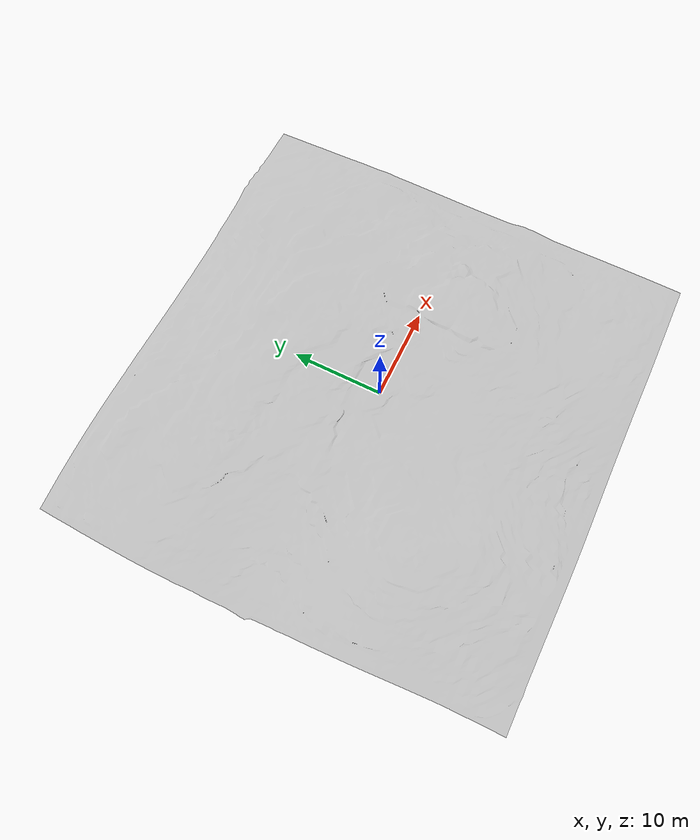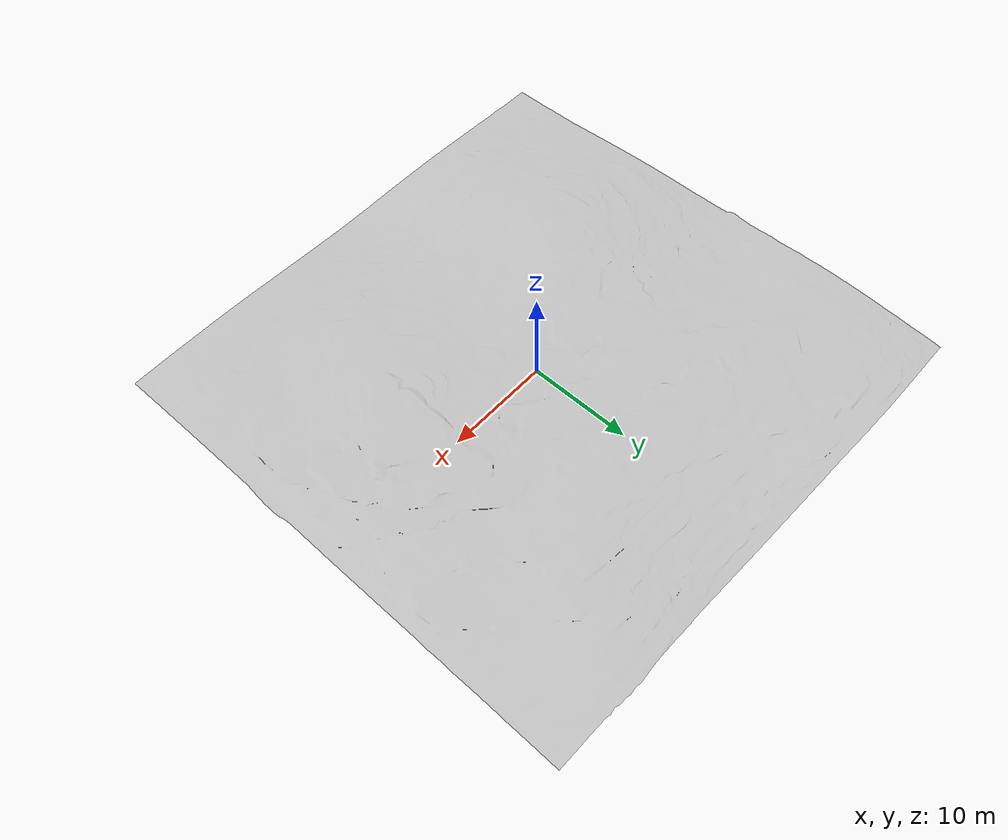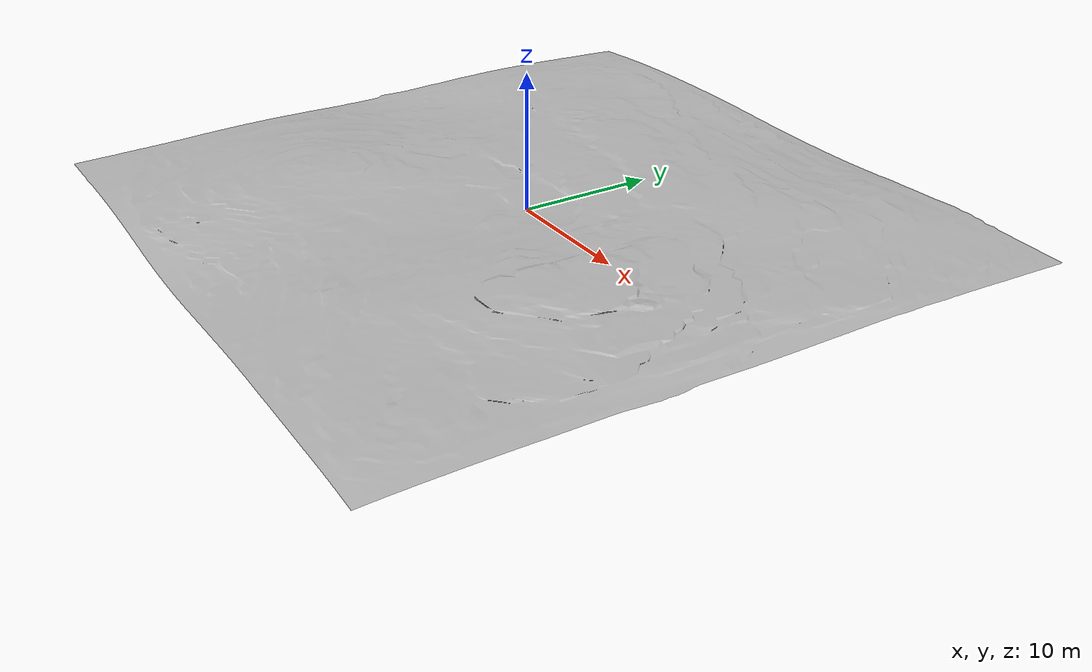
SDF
<sdf version="1.7">
 <world name="default">
  <light name="sun" type="directional">
   <pose>0 0 10 0 -0 0</pose>
   <diffuse>0.8 0.8 0.8 1</diffuse>
   <specular>0.2 0.2 0.2 1</specular>
   <attenuation>
    <range>1000</range>
    <constant>0.9</constant>
    <linear>0.01</linear>
    <quadratic>0.001</quadratic>
   </attenuation>
   <direction>-0.5 0.1 -0.9</direction>
   <spot><inner_angle>0</inner_angle><outer_angle>0</outer_angle><falloff>0</falloff></spot>
  </light>
  <model name="terrain_1">
   <static>1</static>
   <link name="body">
    <visual name="visual">
     <geometry><mesh><uri>model://terrain_1/media/terrain_1.dae</uri></mesh></geometry>
     <material>
      <script>
       <uri>model://terrain_1/media/scripts</uri>
       <uri>model://terrain_1/media/Textures</uri>
       <name>RepeatedGrass/Diffuse</name>
      </script>
     </material>
    </visual>
    <collision name="collision">
     <geometry><mesh><uri>model://terrain_1/media/terrain_1.dae</uri></mesh></geometry>
    </collision>
   </link>
  </model>
  <gravity>0 0 -9.8</gravity>
  <magnetic_field>6e-06 2.3e-05 -4.2e-05</magnetic_field>
  <atmosphere type="adiabatic"/>
  <physics type="ode">
   <max_step_size>0.001</max_step_size>
   <real_time_factor>1</real_time_factor>
   <real_time_update_rate>1000</real_time_update_rate>
  </physics>
  <scene><ambient>0.4 0.4 0.4 1</ambient><background>0.7 0.7 0.7 1</background><shadows>1</shadows></scene>
  <spherical_coordinates>
   <surface_model>EARTH_WGS84</surface_model>
   <latitude_deg>0</latitude_deg>
   <longitude_deg>0</longitude_deg>
   <elevation>0</elevation>
   <heading_deg>0</heading_deg>
  </spherical_coordinates>
 </world>
</sdf>
